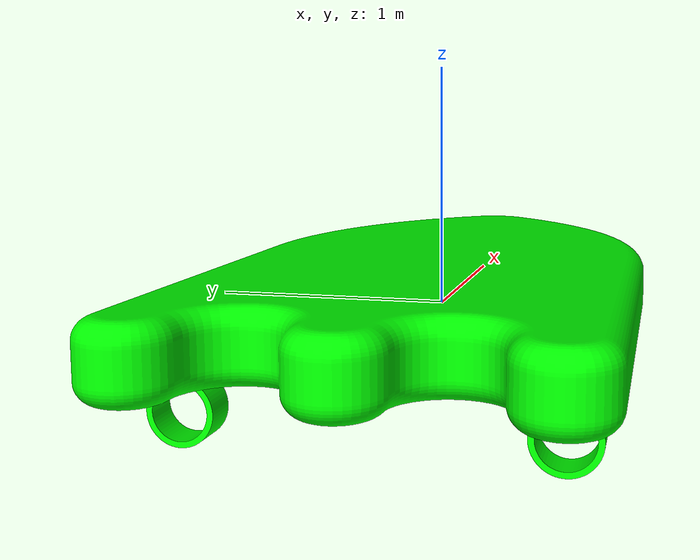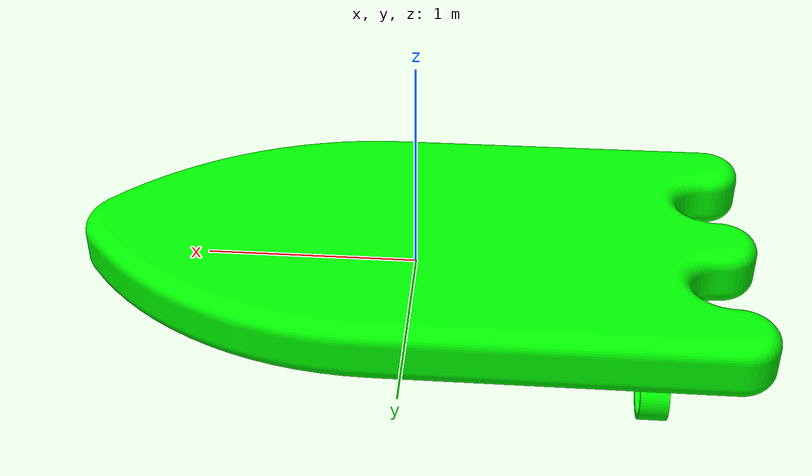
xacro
<?xml version="1.0"?>
<robot xmlns:xacro="http://ros.org/wiki/xacro" name="wam-v">
  <!-- Required arg for melodic and kinetic... -->
  <xacro:arg name="namespace" default="wamv"/>
  <xacro:property name="namespace" value="$(arg namespace)" scope="global" />
  <!-- Macro for creating the main collisions as simple shapes. -->

  <xacro:macro name="main_collisions" params="prefix reflect:=1">

    <!-- Joint -->
    <collision name="${prefix}_joint">
      <origin xyz="0.58 ${1.03*reflect} 0.6" rpy="${0*reflect} -0.6 0" />
      <geometry>
        <box size="0.65 0.2 0.1" />
      </geometry>
    </collision>
  </xacro:macro>

  <link name="${namespace}/base_link">
  </link>

  <joint name="${namespace}/dummy_joint" type = "fixed">
    <parent link="${namespace}/base_link"/>
    <child link="${namespace}/dummy_link"/>
  </joint>

  <!-- Basic model of the 16' WAM-V USV -->
  <link name="${namespace}/dummy_link">
    <visual>
      <origin xyz="0 0 -0.05" rpy="0 0 3.14159" />
      <geometry>
        <mesh filename="package://usv_description/models/WAM-V-Base/mesh/balsa.dae" scale="0.1 0.1 0.1"/>
      </geometry>
    </visual>

    <collision name="base_base">
      <origin xyz="0 0 -0.05" rpy="0 0 3.14159" />
      <geometry>
        <mesh filename="package://usv_description/models/WAM-V-Base/mesh/balsa.dae" scale="0.1 0.1 0.1"/>
      </geometry>
    </collision>

    <inertial>

      <mass value="24.0"/>
      <!--inertia ixx="13.76" ixy="0.0" ixz="0.0" iyy="13.76" iyz="0.0" izz="14.45"/-->
      <inertia ixx="4.77" ixy="0.0" ixz="0.0" iyy="1.01" iyz="0.0" izz="5.78"/>
            <!--inertia ixx="120.0" ixy="0.0" ixz="0.0" iyy="125.0" iyz="0.0" izz="120.0"/-->

      <!--inertia ixx="120.0" ixy="0.0" ixz="0.0" iyy="393" iyz="0.0" izz="446.0"/-->
    </inertial>
  </link>

</robot>
